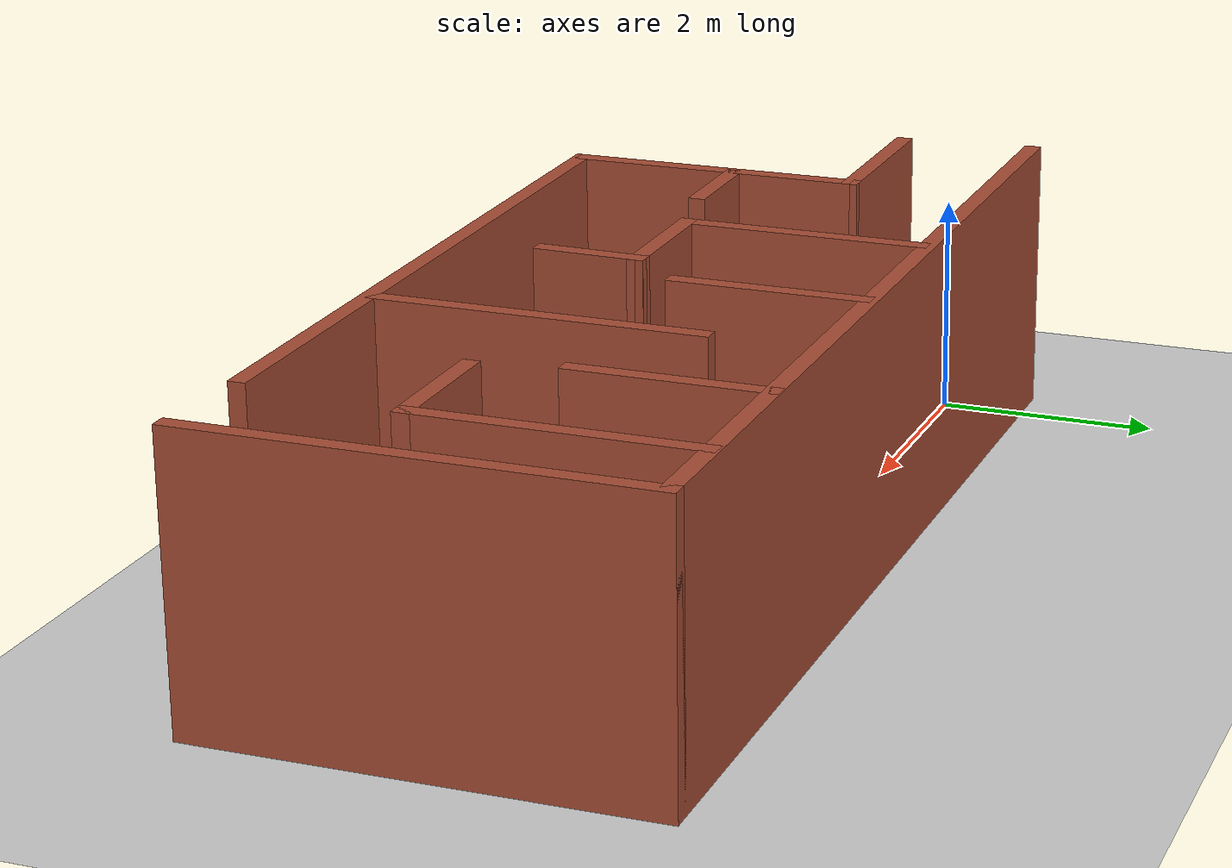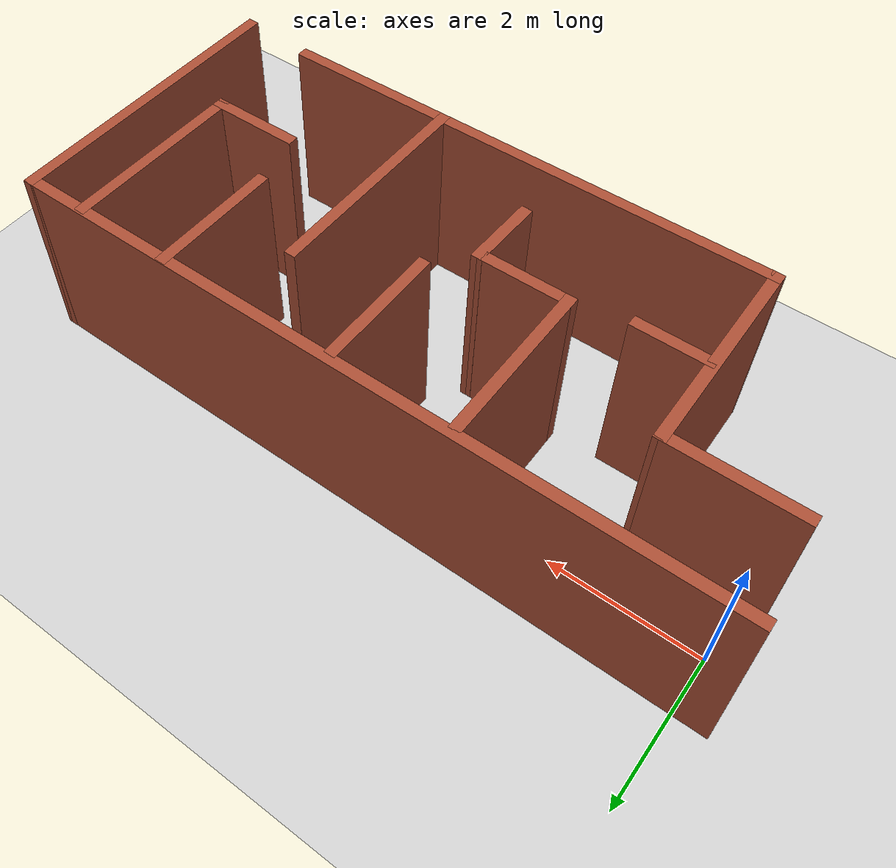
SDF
<sdf version="1.7">
 <world name="default">
  <light name="sun" type="directional">
   <pose>0 0 10 0 -0 0</pose>
   <diffuse>0.8 0.8 0.8 1</diffuse>
   <specular>0.2 0.2 0.2 1</specular>
   <attenuation>
    <range>1000</range>
    <constant>0.9</constant>
    <linear>0.01</linear>
    <quadratic>0.001</quadratic>
   </attenuation>
   <direction>-0.5 0.1 -0.9</direction>
   <spot><inner_angle>0</inner_angle><outer_angle>0</outer_angle><falloff>0</falloff></spot>
  </light>
  <model name="ground_plane">
   <static>1</static>
   <link name="link">
    <collision name="collision">
     <geometry><plane><normal>0 0 1</normal><size>100 100</size></plane></geometry>
     <surface><friction><ode><mu>100</mu><mu2>50</mu2></ode></friction></surface>
    </collision>
    <visual name="visual">
     <cast_shadows>0</cast_shadows>
     <geometry><plane><normal>0 0 1</normal><size>100 100</size></plane></geometry>
     <material>
      <script><uri>file://media/materials/scripts/gazebo.material</uri><name>Gazebo/Grey</name></script>
     </material>
    </visual>
   </link>
  </model>
  <gravity>0 0 -9.8</gravity>
  <magnetic_field>6e-06 2.3e-05 -4.2e-05</magnetic_field>
  <atmosphere type="adiabatic"/>
  <physics type="ode">
   <max_step_size>0.001</max_step_size>
   <real_time_factor>1</real_time_factor>
   <real_time_update_rate>1000</real_time_update_rate>
  </physics>
  <scene><ambient>0.4 0.4 0.4 1</ambient><background>0.7 0.7 0.7 1</background><shadows>1</shadows></scene>
  <spherical_coordinates>
   <surface_model>EARTH_WGS84</surface_model>
   <latitude_deg>0</latitude_deg>
   <longitude_deg>0</longitude_deg>
   <elevation>0</elevation>
   <heading_deg>0</heading_deg>
  </spherical_coordinates>
  <model name="frp_1100309">
   <link name="base_link">
    <inertial>
     <pose>-0.008866 -1e-06 0.071494 0 -0 0</pose>
     <mass>7.24371</mass>
     <inertia>
      <ixx>0.0152329</ixx>
      <ixy>1.04171e-06</ixy>
      <ixz>0.00432875</ixz>
      <iyy>0.0334442</iyy>
      <iyz>-1.18311e-07</iyz>
      <izz>0.0276984</izz>
     </inertia>
    </inertial>
    <collision name="base_link_collision">
     <geometry>
      <mesh>
       <scale>0.001 0.001 0.001</scale>
       <uri>/home/rogerwen/catkin_ws/src/frp_1100309_description/meshes/base_link.stl</uri>
      </mesh>
     </geometry>
     <surface><friction><ode><mu>0.2</mu><mu2>0.2</mu2></ode></friction></surface>
    </collision>
    <collision name="base_link_fixed_joint_lump__lidar_1_collision_1">
     <geometry>
      <mesh>
       <scale>0.001 0.001 0.001</scale>
       <uri>/home/rogerwen/catkin_ws/src/frp_1100309_description/meshes/lidar_1.stl</uri>
      </mesh>
     </geometry>
     <surface><friction><ode><mu>0.1</mu><mu2>0.1</mu2></ode></friction></surface>
    </collision>
    <collision name="base_link_fixed_joint_lump__camera_1_collision_2">
     <geometry>
      <mesh>
       <scale>0.001 0.001 0.001</scale>
       <uri>/home/rogerwen/catkin_ws/src/frp_1100309_description/meshes/camera_1.stl</uri>
      </mesh>
     </geometry>
     <surface><friction><ode><mu>0.2</mu><mu2>0.2</mu2></ode></friction></surface>
    </collision>
    <visual name="base_link_visual">
     <geometry>
      <mesh>
       <scale>0.001 0.001 0.001</scale>
       <uri>/home/rogerwen/catkin_ws/src/frp_1100309_description/meshes/base_link.stl</uri>
      </mesh>
     </geometry>
     <material>
      <script><name>Gazebo/Silver</name><uri>file://media/materials/scripts/gazebo.material</uri></script>
     </material>
    </visual>
    <visual name="base_link_fixed_joint_lump__lidar_1_visual_1">
     <geometry>
      <mesh>
       <scale>0.001 0.001 0.001</scale>
       <uri>/home/rogerwen/catkin_ws/src/frp_1100309_description/meshes/lidar_1.stl</uri>
      </mesh>
     </geometry>
     <material>
      <script><name>Gazebo/Silver</name><uri>file://media/materials/scripts/gazebo.material</uri></script>
     </material>
    </visual>
    <visual name="base_link_fixed_joint_lump__camera_1_visual_2">
     <geometry>
      <mesh>
       <scale>0.001 0.001 0.001</scale>
       <uri>/home/rogerwen/catkin_ws/src/frp_1100309_description/meshes/camera_1.stl</uri>
      </mesh>
     </geometry>
     <material>
      <script><name>Gazebo/Silver</name><uri>file://media/materials/scripts/gazebo.material</uri></script>
     </material>
    </visual>
    <sensor name="head_hokuyo_sensor" type="ray">
     <visualize>1</visualize>
     <update_rate>40</update_rate>
     <ray>
      <scan>
       <horizontal>
        <samples>720</samples>
        <resolution>1</resolution>
        <min_angle>-1.5708</min_angle>
        <max_angle>1.5708</max_angle>
       </horizontal>
       <vertical><samples>1</samples><min_angle>0</min_angle><max_angle>0</max_angle></vertical>
      </scan>
      <range><min>0.1</min><max>30</max><resolution>0.01</resolution></range>
      <noise><type>gaussian</type><mean>0</mean><stddev>0.01</stddev></noise>
     </ray>
     <plugin name="gazebo_ros_head_hokuyo_controller" filename="libgazebo_ros_laser.so">
      <topicName>/scan</topicName>
      <frameName>lidar_1</frameName>
      <robotNamespace>/</robotNamespace>
     </plugin>
     <pose>0.065 0 0.07 0 -0 0</pose>
    </sensor>
    <self_collide>1</self_collide>
    <sensor name="camera1" type="camera">
     <update_rate>30</update_rate>
     <camera name="head">
      <horizontal_fov>1.39626</horizontal_fov>
      <image><width>800</width><height>800</height><format>R8G8B8</format></image>
      <clip><near>0.02</near><far>300</far></clip>
      <noise><type>gaussian</type><mean>0</mean><stddev>0.007</stddev></noise>
     </camera>
     <plugin name="camera_controller" filename="libgazebo_ros_camera.so">
      <alwaysOn>1</alwaysOn>
      <updateRate>0.0</updateRate>
      <cameraName>/camera</cameraName>
      <imageTopicName>image_raw</imageTopicName>
      <cameraInfoTopicName>camera_info</cameraInfoTopicName>
      <frameName>camera_1</frameName>
      <hackBaseline>0.07</hackBaseline>
      <distortionK1>0.0</distortionK1>
      <distortionK2>0.0</distortionK2>
      <distortionK3>0.0</distortionK3>
      <distortionT1>0.0</distortionT1>
      <distortionT2>0.0</distortionT2>
      <robotNamespace>/</robotNamespace>
     </plugin>
     <pose>-0.06 0 0.072 0 -0 0</pose>
    </sensor>
   </link>
   <joint name="Revolute 12" type="revolute">
    <pose relative_to="base_link">0 -0.05 0.05 0 -0 0</pose>
    <parent>base_link</parent>
    <child>right_wheel_1</child>
    <axis>
     <xyz>0 1 0</xyz>
     <limit><lower>-1e+16</lower><upper>1e+16</upper></limit>
     <dynamics><spring_reference>0</spring_reference><spring_stiffness>0</spring_stiffness></dynamics>
    </axis>
   </joint>
   <link name="right_wheel_1">
    <pose relative_to="Revolute 12">0 0 0 0 -0 0</pose>
    <inertial>
     <pose>-0 -0.01 -0 0 -0 0</pose>
     <mass>0.146084</mass>
     <inertia><ixx>9.6e-05</ixx><ixy>0</ixy><ixz>0</ixz><iyy>0.000183</iyy><iyz>0</iyz><izz>9.6e-05</izz></inertia>
    </inertial>
    <collision name="right_wheel_1_collision">
     <pose>0 0.05 -0.05 0 -0 0</pose>
     <geometry>
      <mesh>
       <scale>0.001 0.001 0.001</scale>
       <uri>/home/rogerwen/catkin_ws/src/frp_1100309_description/meshes/right_wheel_1.stl</uri>
      </mesh>
     </geometry>
     <surface><friction><ode><mu>1500</mu><mu2>1500</mu2></ode></friction></surface>
    </collision>
    <visual name="right_wheel_1_visual">
     <pose>0 0.05 -0.05 0 -0 0</pose>
     <geometry>
      <mesh>
       <scale>0.001 0.001 0.001</scale>
       <uri>/home/rogerwen/catkin_ws/src/frp_1100309_description/meshes/right_wheel_1.stl</uri>
      </mesh>
     </geometry>
     <material>
      <script><name>Gazebo/Silver</name><uri>file://media/materials/scripts/gazebo.material</uri></script>
     </material>
    </visual>
    <self_collide>1</self_collide>
   </link>
   <joint name="Revolute 13" type="revolute">
    <pose relative_to="base_link">0 0.05 0.05 0 -0 0</pose>
    <parent>base_link</parent>
    <child>left_wheel_1</child>
    <axis>
     <xyz>0 1 0</xyz>
     <limit><lower>-1e+16</lower><upper>1e+16</upper></limit>
     <dynamics><spring_reference>0</spring_reference><spring_stiffness>0</spring_stiffness></dynamics>
    </axis>
   </joint>
   <link name="left_wheel_1">
    <pose relative_to="Revolute 13">0 0 0 0 -0 0</pose>
    <inertial>
     <pose>-0 0.01 -0 0 -0 0</pose>
     <mass>0.146084</mass>
     <inertia><ixx>9.6e-05</ixx><ixy>0</ixy><ixz>0</ixz><iyy>0.000183</iyy><iyz>0</iyz><izz>9.6e-05</izz></inertia>
    </inertial>
    <collision name="left_wheel_1_collision">
     <pose>0 -0.05 -0.05 0 -0 0</pose>
     <geometry>
      <mesh>
       <scale>0.001 0.001 0.001</scale>
       <uri>/home/rogerwen/catkin_ws/src/frp_1100309_description/meshes/left_wheel_1.stl</uri>
      </mesh>
     </geometry>
     <surface><friction><ode><mu>1500</mu><mu2>1500</mu2></ode></friction></surface>
    </collision>
    <visual name="left_wheel_1_visual">
     <pose>0 -0.05 -0.05 0 -0 0</pose>
     <geometry>
      <mesh>
       <scale>0.001 0.001 0.001</scale>
       <uri>/home/rogerwen/catkin_ws/src/frp_1100309_description/meshes/left_wheel_1.stl</uri>
      </mesh>
     </geometry>
     <material>
      <script><name>Gazebo/Silver</name><uri>file://media/materials/scripts/gazebo.material</uri></script>
     </material>
    </visual>
    <self_collide>1</self_collide>
   </link>
   <plugin name="control" filename="libgazebo_ros_control.so"><robotNamespace>/</robotNamespace></plugin>
   <static>0</static>
   <plugin name="differential_drive_controller" filename="libgazebo_ros_diff_drive.so">
    <updateRate>100</updateRate>
    <leftJoint>Revolute 13</leftJoint>
    <rightJoint>Revolute 12</rightJoint>
    <wheelSeparation>0.1</wheelSeparation>
    <wheelDiameter>0.1</wheelDiameter>
    <wheelAcceleration>1.0</wheelAcceleration>
    <wheelTorque>70</wheelTorque>
    <commandTopic>cmd_vel</commandTopic>
    <odometryTopic>odom</odometryTopic>
    <odometryFrame>odom</odometryFrame>
    <robotBaseFrame>base_link</robotBaseFrame>
    <odometrySource>1</odometrySource>
    <publishWheelTF>1</publishWheelTF>
    <publishOdom>1</publishOdom>
    <publishWheelJointState>1</publishWheelJointState>
    <legacyMode>0</legacyMode>
    <robotNamespace>/</robotNamespace>
   </plugin>
   <pose>0.048224 2.6e-05 -1e-06 -1.9e-05 1.6e-05 0.000113</pose>
  </model>
  <model name="fp">
   <pose>4.316 -1.245 0 0 -0 0</pose>
   <link name="Wall_14">
    <collision name="Wall_14_Collision">
     <geometry><box><size>9.5 0.15 2.5</size></box></geometry>
     <pose>0 0 1.25 0 -0 0</pose>
    </collision>
    <visual name="Wall_14_Visual">
     <pose>0 0 1.25 0 -0 0</pose>
     <geometry><box><size>9.5 0.15 2.5</size></box></geometry>
     <material>
      <script><uri>file://media/materials/scripts/gazebo.material</uri><name>Gazebo/Bricks</name></script>
      <ambient>1 1 1 1</ambient>
     </material>
     <meta><layer>0</layer></meta>
    </visual>
    <pose>0 1.925 0 0 -0 0</pose>
   </link>
   <link name="Wall_16">
    <collision name="Wall_16_Collision">
     <geometry><box><size>1.70491 0.15 2.5</size></box></geometry>
     <pose>0 0 1.25 0 -0 0</pose>
    </collision>
    <visual name="Wall_16_Visual">
     <pose>0 0 1.25 0 -0 0</pose>
     <geometry><box><size>1.70491 0.15 2.5</size></box></geometry>
     <material>
      <script><uri>file://media/materials/scripts/gazebo.material</uri><name>Gazebo/Bricks</name></script>
      <ambient>1 1 1 1</ambient>
     </material>
     <meta><layer>0</layer></meta>
    </visual>
    <pose>-3.7785 0.709 0 0 -0 0</pose>
   </link>
   <link name="Wall_17">
    <collision name="Wall_17_Collision">
     <geometry><box><size>2.75697 0.15 2.5</size></box></geometry>
     <pose>0 0 1.25 0 -0 0</pose>
    </collision>
    <visual name="Wall_17_Visual">
     <pose>0 0 1.25 0 -0 0</pose>
     <geometry><box><size>2.75697 0.15 2.5</size></box></geometry>
     <material>
      <script><uri>file://media/materials/scripts/gazebo.material</uri><name>Gazebo/Bricks</name></script>
      <ambient>1 1 1 1</ambient>
     </material>
     <meta><layer>0</layer></meta>
    </visual>
    <pose>-2.99 -0.5945 0 0 -0 -1.56236</pose>
   </link>
   <link name="Wall_18">
    <collision name="Wall_18_Collision">
     <geometry><box><size>6.78381 0.15 2.5</size></box></geometry>
     <pose>0 0 1.25 0 -0 0</pose>
    </collision>
    <visual name="Wall_18_Visual">
     <pose>0 0 1.25 0 -0 0</pose>
     <geometry><box><size>6.78381 0.15 2.5</size></box></geometry>
     <material>
      <script><uri>file://media/materials/scripts/gazebo.material</uri><name>Gazebo/Bricks</name></script>
      <ambient>1 1 1 1</ambient>
     </material>
     <meta><layer>0</layer></meta>
    </visual>
    <pose>0.338 -1.8865 0 0 -0 0.003467</pose>
   </link>
   <link name="Wall_22">
    <collision name="Wall_22_Collision">
     <geometry><box><size>1 0.15 2.5</size></box></geometry>
     <pose>0 0 1.25 0 -0 0</pose>
    </collision>
    <visual name="Wall_22_Visual">
     <pose>0 0 1.25 0 -0 0</pose>
     <geometry><box><size>1 0.15 2.5</size></box></geometry>
     <material>
      <script><uri>file://media/materials/scripts/gazebo.material</uri><name>Gazebo/Bricks</name></script>
      <ambient>1 1 1 1</ambient>
     </material>
     <meta><layer>0</layer></meta>
    </visual>
    <pose>-2.52 -0.407 0 0 -0 0</pose>
   </link>
   <link name="Wall_24">
    <collision name="Wall_24_Collision">
     <geometry><box><size>2.25 0.15 2.5</size></box></geometry>
     <pose>0 0 1.25 0 -0 0</pose>
    </collision>
    <visual name="Wall_24_Visual">
     <pose>0 0 1.25 0 -0 0</pose>
     <geometry><box><size>2.25 0.15 2.5</size></box></geometry>
     <material>
      <script><uri>file://media/materials/scripts/gazebo.material</uri><name>Gazebo/Bricks</name></script>
      <ambient>1 1 1 1</ambient>
     </material>
     <meta><layer>0</layer></meta>
    </visual>
    <pose>-1.344 0.809 0 0 -0 -1.5708</pose>
   </link>
   <link name="Wall_25">
    <collision name="Wall_25_Collision">
     <geometry><box><size>1.29509 0.15 2.5</size></box></geometry>
     <pose>0 0 1.25 0 -0 0</pose>
    </collision>
    <visual name="Wall_25_Visual">
     <pose>0 0 1.25 0 -0 0</pose>
     <geometry><box><size>1.29509 0.15 2.5</size></box></geometry>
     <material>
      <script><uri>file://media/materials/scripts/gazebo.material</uri><name>Gazebo/Bricks</name></script>
      <ambient>1 1 1 1</ambient>
     </material>
     <meta><layer>0</layer></meta>
    </visual>
    <pose>-0.7715 -0.241 0 0 -0 0</pose>
   </link>
   <link name="Wall_26">
    <collision name="Wall_26_Collision">
     <geometry><box><size>1 0.15 2.5</size></box></geometry>
     <pose>0 0 1.25 0 -0 0</pose>
    </collision>
    <visual name="Wall_26_Visual">
     <pose>0 0 1.25 0 -0 0</pose>
     <geometry><box><size>1 0.15 2.5</size></box></geometry>
     <material>
      <script><uri>file://media/materials/scripts/gazebo.material</uri><name>Gazebo/Bricks</name></script>
      <ambient>1 1 1 1</ambient>
     </material>
     <meta><layer>0</layer></meta>
    </visual>
    <pose>-0.21 -0.666 0 0 -0 -1.59667</pose>
   </link>
   <link name="Wall_28">
    <collision name="Wall_28_Collision">
     <geometry><box><size>1.75 0.15 2.5</size></box></geometry>
     <pose>0 0 1.25 0 -0 0</pose>
    </collision>
    <visual name="Wall_28_Visual">
     <pose>0 0 1.25 0 -0 0</pose>
     <geometry><box><size>1.75 0.15 2.5</size></box></geometry>
     <material>
      <script><uri>file://media/materials/scripts/gazebo.material</uri><name>Gazebo/Bricks</name></script>
      <ambient>1 1 1 1</ambient>
     </material>
     <meta><layer>0</layer></meta>
    </visual>
    <pose>0.234 1.07 0 0 -0 -1.5708</pose>
   </link>
   <link name="Wall_30">
    <collision name="Wall_30_Collision">
     <geometry><box><size>3 0.15 2.5</size></box></geometry>
     <pose>0 0 1.25 0 -0 0</pose>
    </collision>
    <visual name="Wall_30_Visual">
     <pose>0 0 1.25 0 -0 0</pose>
     <geometry><box><size>3 0.15 2.5</size></box></geometry>
     <material>
      <script><uri>file://media/materials/scripts/gazebo.material</uri><name>Gazebo/Bricks</name></script>
      <ambient>1 1 1 1</ambient>
     </material>
     <meta><layer>0</layer></meta>
    </visual>
    <pose>1.485 -0.458 0 0 -0 1.5708</pose>
   </link>
   <link name="Wall_33">
    <collision name="Wall_33_Collision">
     <geometry><box><size>1.75 0.15 2.5</size></box></geometry>
     <pose>0 0 1.25 0 -0 0</pose>
    </collision>
    <visual name="Wall_33_Visual">
     <pose>0 0 1.25 0 -0 0</pose>
     <geometry><box><size>1.75 0.15 2.5</size></box></geometry>
     <material>
      <script><uri>file://media/materials/scripts/gazebo.material</uri><name>Gazebo/Bricks</name></script>
      <ambient>1 1 1 1</ambient>
     </material>
     <meta><layer>0</layer></meta>
    </visual>
    <pose>2.556 1.115 0 0 -0 -1.5708</pose>
   </link>
   <link name="Wall_35">
    <collision name="Wall_35_Collision">
     <geometry><box><size>2.5 0.15 2.5</size></box></geometry>
     <pose>0 0 1.25 0 -0 0</pose>
    </collision>
    <visual name="Wall_35_Visual">
     <pose>0 0 1.25 0 -0 0</pose>
     <geometry><box><size>2.5 0.15 2.5</size></box></geometry>
     <material>
      <script><uri>file://media/materials/scripts/gazebo.material</uri><name>Gazebo/Bricks</name></script>
      <ambient>1 1 1 1</ambient>
     </material>
     <meta><layer>0</layer></meta>
    </visual>
    <pose>3.852 0.729 0 0 -0 -1.5708</pose>
   </link>
   <link name="Wall_36">
    <collision name="Wall_36_Collision">
     <geometry><box><size>1.25 0.15 2.5</size></box></geometry>
     <pose>0 0 1.25 0 -0 0</pose>
    </collision>
    <visual name="Wall_36_Visual">
     <pose>0 0 1.25 0 -0 0</pose>
     <geometry><box><size>1.25 0.15 2.5</size></box></geometry>
     <material>
      <script><uri>file://media/materials/scripts/gazebo.material</uri><name>Gazebo/Bricks</name></script>
      <ambient>1 1 1 1</ambient>
     </material>
     <meta><layer>0</layer></meta>
    </visual>
    <pose>3.302 -0.446 0 0 -0 3.14159</pose>
   </link>
   <link name="Wall_38">
    <collision name="Wall_38_Collision">
     <geometry><box><size>4 0.15 2.5</size></box></geometry>
     <pose>0 0 1.25 0 -0 0</pose>
    </collision>
    <visual name="Wall_38_Visual">
     <pose>0 0 1.25 0 -0 0</pose>
     <geometry><box><size>4 0.15 2.5</size></box></geometry>
     <material>
      <script><uri>file://media/materials/scripts/gazebo.material</uri><name>Gazebo/Bricks</name></script>
      <ambient>1 1 1 1</ambient>
     </material>
     <meta><layer>0</layer></meta>
    </visual>
    <pose>4.675 0 0 0 -0 -1.5708</pose>
   </link>
   <static>1</static>
  </model>
 </world>
</sdf>
